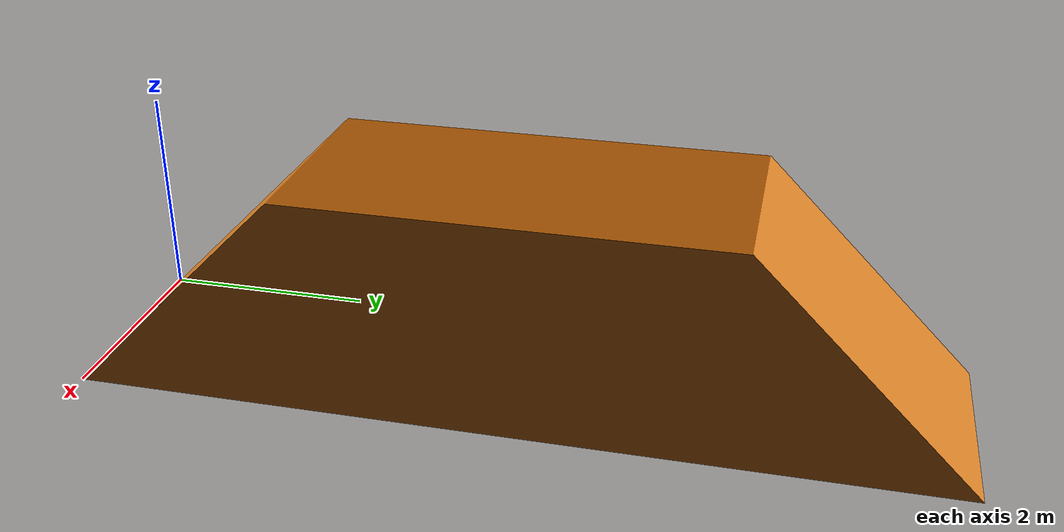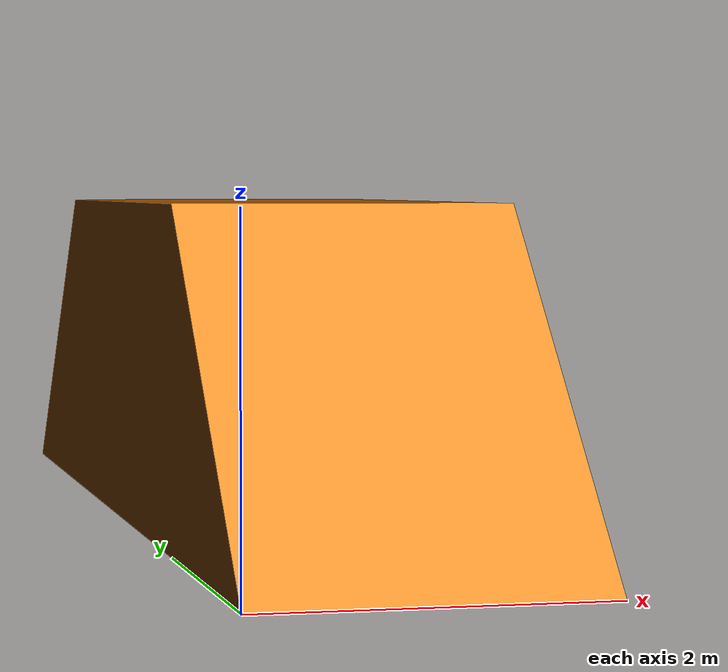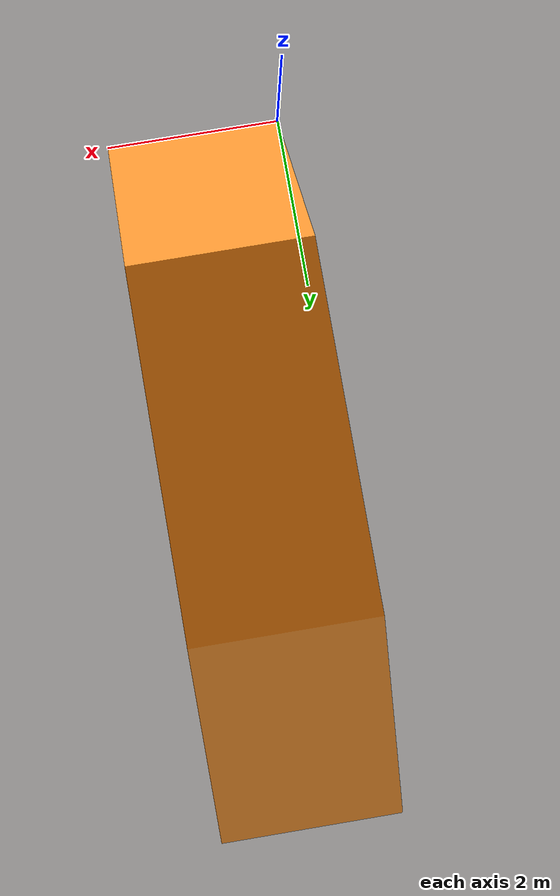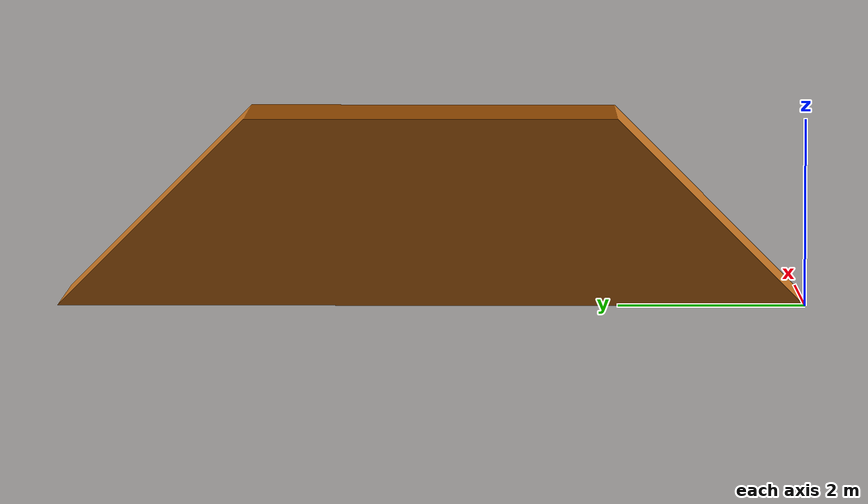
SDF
<?xml version="1.0" ?>
<sdf version="1.4">
  <model name="ugvc_45degree_slope">
    <static>false</static>

    <link name="45degree_slope">
      <pose>0 0 0 0 -0 0</pose>
      <inertial>
        <mass>1</mass>
        <inertia>
          <ixx>1</ixx>
          <ixy>0</ixy>
          <ixz>0</ixz>
          <iyy>1</iyy>
          <iyz>0</iyz>
          <izz>1</izz>
        </inertia>
      </inertial>

      <collision name='collision'>
        <geometry>
          <mesh>
            <uri>file://meshes/45slope.dae</uri>
          </mesh>
        </geometry>
        <max_contacts>10</max_contacts>
        <surface>
          <contact>
            <ode>
            <max_vel>0.1</max_vel>
            <min_depth>0.001</min_depth>
            </ode>
          </contact>
          <friction>
            <ode/>
          </friction>
        </surface>
      </collision>

      <visual name='visual'>
          <geometry>
            <mesh>
              <uri>file://meshes/45slope1.dae</uri>
            </mesh>
          </geometry>
          <material>

        </material>
        </visual>
    </link>
  </model>
</sdf>
